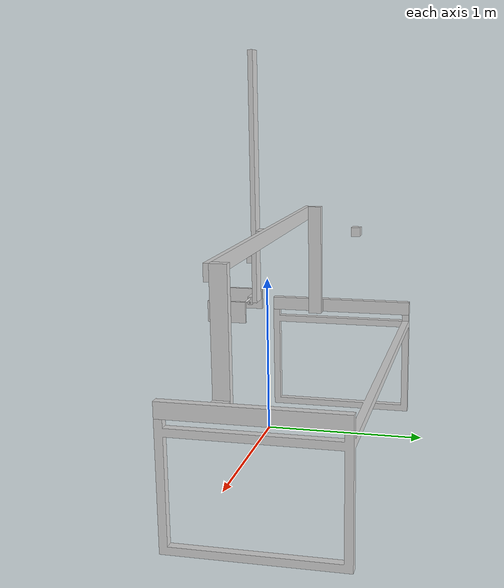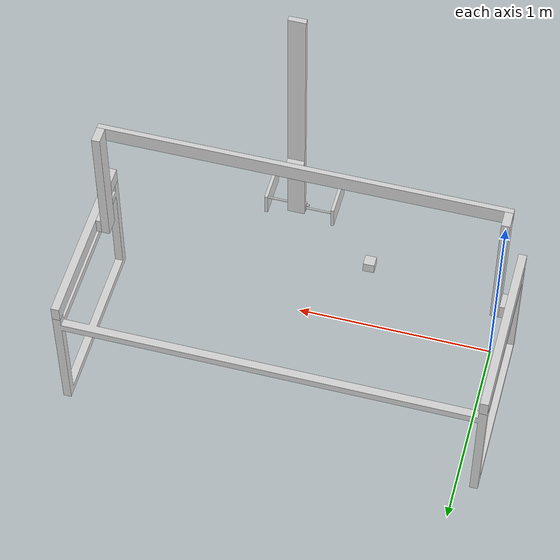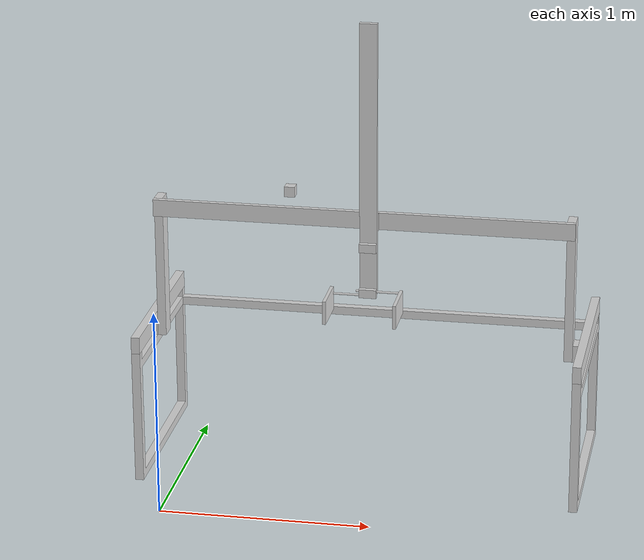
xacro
<?xml version="1.0" ?>
<robot name="palletizer" xmlns:xacro="http://www.ros.org/wiki/xacro">

  <xacro:include filename="$(find palletizer_description)/urdf/materials.xacro" />
  <xacro:include filename="$(find palletizer_description)/urdf/palletizer.gazebo" />

  <link name="world"/>

  <joint name="fixed_to_world" type="fixed">
    <parent link="world"/>
    <child link="base_link"/>
    <origin xyz="0 0 0.01" rpy="0 0 0"/>
  </joint>

  <link name="base_link">
    <inertial>
      <origin xyz="0.9227209592130785 0.5670413416556851 0.5148358419198835" rpy="0 0 0"/>
      <mass value="97.4656"/>
      <inertia ixx="16.747122" iyy="89.286245" izz="94.763561" ixy="0.0" iyz="-2.123132" ixz="0.0"/>
    </inertial>
    <visual>
      <origin xyz="0 0 0" rpy="0 0 0"/>
      <geometry>
        <mesh filename="package://palletizer_description/meshes/base_link.stl" scale="0.001 0.001 0.001"/>
      </geometry>
      <material name="silver"/>
    </visual>
    <collision>
      <origin xyz="0 0 0" rpy="0 0 0"/>
      <geometry>
        <mesh filename="package://palletizer_description/meshes/base_link.stl" scale="0.001 0.001 0.001"/>
      </geometry>
    </collision>
  </link>

  <link name="base_eje_x_izq_1_1">
    <inertial>
      <origin xyz="-0.09727904078692015 0.4987939189752732 0.17607295532194467" rpy="0 0 0"/>
      <mass value="22.1056"/>
      <inertia ixx="1.438338" iyy="0.014737" izz="1.429495" ixy="0.0" iyz="0.0" ixz="0.0"/>
    </inertial>
    <visual>
      <origin xyz="0.0 0.04 -0.64" rpy="0 0 0"/>
      <geometry>
        <mesh filename="package://palletizer_description/meshes/base_eje_x_izq_1_1.stl" scale="0.001 0.001 0.001"/>
      </geometry>
      <material name="silver"/>
    </visual>
    <collision>
      <origin xyz="0.0 0.04 -0.64" rpy="0 0 0"/>
      <geometry>
        <mesh filename="package://palletizer_description/meshes/base_eje_x_izq_1_1.stl" scale="0.001 0.001 0.001"/>
      </geometry>
    </collision>
  </link>

  <link name="base_eje_x_der_1_1">
    <inertial>
      <origin xyz="-0.0972790407869224 0.498793918975273 0.17607295532194644" rpy="0 0 0"/>
      <mass value="22.1056"/>
      <inertia ixx="1.438338" iyy="0.014737" izz="1.429495" ixy="0.0" iyz="-0.0" ixz="0.0"/>
    </inertial>
    <visual>
      <origin xyz="-2.04 0.04 -0.64" rpy="0 0 0"/>
      <geometry>
        <mesh filename="package://palletizer_description/meshes/base_eje_x_der_1_1.stl" scale="0.001 0.001 0.001"/>
      </geometry>
      <material name="silver"/>
    </visual>
    <collision>
      <origin xyz="-2.04 0.04 -0.64" rpy="0 0 0"/>
      <geometry>
        <mesh filename="package://palletizer_description/meshes/base_eje_x_der_1_1.stl" scale="0.001 0.001 0.001"/>
      </geometry>
    </collision>
  </link>

  <joint name="rigida_17" type="fixed">
    <origin xyz="0.0 -0.04 0.64" rpy="0 0 0"/>
    <parent link="base_link"/>
    <child link="base_eje_x_izq_1_1"/>
  </joint>

  <joint name="rigida_18" type="fixed">
    <origin xyz="2.04 -0.04 0.64" rpy="0 0 0"/>
    <parent link="base_link"/>
    <child link="base_eje_x_der_1_1"/>
  </joint>

  <link name="carro_x_der_1_1">
    <inertial>
      <origin xyz="-0.0897790407869099 0.8137417184308351 0.09607295532194371" rpy="0 0 0"/>
      <mass value="1.2559999999999998"/>
      <inertia ixx="0.01" iyy="0.01" izz="0.01" ixy="0.0" iyz="-0.0" ixz="0.0"/>
    </inertial>
    <visual>
      <origin xyz="-2.0 0.04 -0.72" rpy="0 0 0"/>
      <geometry>
        <mesh filename="package://palletizer_description/meshes/carro_x_der_1_1.stl" scale="0.001 0.001 0.001"/>
      </geometry>
      <material name="silver"/>
    </visual>
    <collision>
      <origin xyz="-2.0 0.04 -0.72" rpy="0 0 0"/>
      <geometry>
        <mesh filename="package://palletizer_description/meshes/carro_x_der_1_1.stl" scale="0.001 0.001 0.001"/>
      </geometry>
    </collision>
  </link>

  <link name="carro_x_izq_1_1">
    <inertial>
      <origin xyz="-0.06477904078692007 0.8137417184308272 0.09607295532194471" rpy="0 0 0"/>
      <mass value="1.2559999999999998"/>
      <inertia ixx="0.01" iyy="0.01" izz="0.01" ixy="0.0" iyz="-0.0" ixz="0.0"/>
    </inertial>
    <visual>
      <origin xyz="0.0 0.04 -0.72" rpy="0 0 0"/>
      <geometry>
        <mesh filename="package://palletizer_description/meshes/carro_x_izq_1_1.stl" scale="0.001 0.001 0.001"/>
      </geometry>
      <material name="silver"/>
    </visual>
    <collision>
      <origin xyz="0.0 0.04 -0.72" rpy="0 0 0"/>
      <geometry>
        <mesh filename="package://palletizer_description/meshes/carro_x_izq_1_1.stl" scale="0.001 0.001 0.001"/>
      </geometry>
    </collision>
  </link>

  <joint name="eje_x" type="prismatic">
    <origin xyz="-0.04 0.0 0.08" rpy="0 0 0"/>
    <parent link="base_eje_x_der_1_1"/>
    <child link="carro_x_der_1_1"/>
    <axis xyz="0 1 0"/>
    <limit lower="0.0" upper="0.6" effort="500" velocity="1.0"/>
    <dynamics damping="10.0"/>
  </joint>

  <joint name="eje_x_copia" type="prismatic">
    <origin xyz="0.0 0.0 0.08" rpy="0 0 0"/>
    <parent link="base_eje_x_izq_1_1"/>
    <child link="carro_x_izq_1_1"/>
    <axis xyz="0 1 0"/>
    <limit lower="0.0" upper="0.6" effort="500" velocity="1.0"/>
    <mimic joint="eje_x" multiplier="1.0" offset="0.0"/>
    <dynamics damping="10.0"/>
  </joint>

  <link name="base_y_izq_1_1">
    <inertial>
      <origin xyz="-0.057279040786918894 0.8137417184308281 0.4760729553219435" rpy="0 0 0"/>
      <mass value="17.081599999999998"/>
      <inertia ixx="0.667321" iyy="0.660489" izz="0.011388" ixy="0.0" iyz="0.0" ixz="0.0"/>
    </inertial>
    <visual>
      <origin xyz="-0.025 0.04 -0.64" rpy="0 0 0"/>
      <geometry>
        <mesh filename="package://palletizer_description/meshes/base_y_izq_1_1.stl" scale="0.001 0.001 0.001"/>
      </geometry>
      <material name="silver"/>
    </visual>
    <collision>
      <origin xyz="-0.025 0.04 -0.64" rpy="0 0 0"/>
      <geometry>
        <mesh filename="package://palletizer_description/meshes/base_y_izq_1_1.stl" scale="0.001 0.001 0.001"/>
      </geometry>
    </collision>
  </link>

  <link name="base_y_der_1_1">
    <inertial>
      <origin xyz="-0.09727904078691152 0.8137417184308332 0.47607295532194416" rpy="0 0 0"/>
      <mass value="17.081599999999998"/>
      <inertia ixx="0.667321" iyy="0.660489" izz="0.011388" ixy="0.0" iyz="-0.0" ixz="-0.0"/>
    </inertial>
    <visual>
      <origin xyz="-1.975 0.04 -0.64" rpy="0 0 0"/>
      <geometry>
        <mesh filename="package://palletizer_description/meshes/base_y_der_1_1.stl" scale="0.001 0.001 0.001"/>
      </geometry>
      <material name="silver"/>
    </visual>
    <collision>
      <origin xyz="-1.975 0.04 -0.64" rpy="0 0 0"/>
      <geometry>
        <mesh filename="package://palletizer_description/meshes/base_y_der_1_1.stl" scale="0.001 0.001 0.001"/>
      </geometry>
    </collision>
  </link>

  <joint name="rigida_5" type="fixed">
    <origin xyz="0.025 0.0 -0.08" rpy="0 0 0"/>
    <parent link="carro_x_izq_1_1"/>
    <child link="base_y_izq_1_1"/>
  </joint>

  <joint name="rigida_6" type="fixed">
    <origin xyz="-0.025 0.0 -0.08" rpy="0 0 0"/>
    <parent link="carro_x_der_1_1"/>
    <child link="base_y_der_1_1"/>
  </joint>

  <link name="eje_carro_y_1_1">
    <inertial>
      <origin xyz="0.9749999592130977 -0.01250028156917038 -0.040000044678056845" rpy="0 0 0"/>
      <mass value="30.614999999998826"/>
      <inertia ixx="0.017923" iyy="9.717456" izz="9.702723" ixy="0.0" iyz="0.0" ixz="0.0"/>
    </inertial>
    <visual>
      <origin xyz="0.052279 -0.733742 -1.456073" rpy="0 0 0"/>
      <geometry>
        <mesh filename="package://palletizer_description/meshes/eje_carro_y_1_1.stl" scale="0.001 0.001 0.001"/>
      </geometry>
      <material name="silver"/>
    </visual>
    <collision>
      <origin xyz="0.052279 -0.733742 -1.456073" rpy="0 0 0"/>
      <geometry>
        <mesh filename="package://palletizer_description/meshes/eje_carro_y_1_1.stl" scale="0.001 0.001 0.001"/>
      </geometry>
    </collision>
  </link>

  <joint name="rigida_7" type="fixed">
    <origin xyz="-2.027279 0.773742 0.816073" rpy="0 0 0"/>
    <parent link="base_y_der_1_1"/>
    <child link="eje_carro_y_1_1"/>
  </joint>

  <link name="carro_y_1_1">
    <inertial>
      <origin xyz="0.5213953273478066 -0.012500281569168936 -0.040000044678056845" rpy="0 0 0"/>
      <mass value="1.2559999999999998"/>
      <inertia ixx="0.01" iyy="0.01" izz="0.01" ixy="-0.0" iyz="0.0" ixz="0.0"/>
    </inertial>
    <visual>
      <origin xyz="0.052279 -0.708742 -1.456073" rpy="0 0 0"/>
      <geometry>
        <mesh filename="package://palletizer_description/meshes/carro_y_1_1.stl" scale="0.001 0.001 0.001"/>
      </geometry>
      <material name="silver"/>
    </visual>
    <collision>
      <origin xyz="0.052279 -0.708742 -1.456073" rpy="0 0 0"/>
      <geometry>
        <mesh filename="package://palletizer_description/meshes/carro_y_1_1.stl" scale="0.001 0.001 0.001"/>
      </geometry>
    </collision>
  </link>

  <joint name="eje_y" type="prismatic">
    <origin xyz="0.0 -0.025 0.0" rpy="0 0 0"/>
    <parent link="eje_carro_y_1_1"/>
    <child link="carro_y_1_1"/>
    <axis xyz="1.0 0.0 0.0"/>
    <limit upper="0.71" lower="-0.75" effort="500" velocity="1.0"/>
  </joint>

  <link name="carro_z_1_1">
    <inertial>
      <origin xyz="-0.039999672652193785 -0.012500281569168159 -0.22447073332304135" rpy="0 0 0"/>
      <mass value="20.095999999999986"/>
      <inertia ixx="2.744821" iyy="2.754492" izz="0.011765" ixy="0.0" iyz="0.0" ixz="0.0"/>
    </inertial>
    <visual>
      <origin xyz="-0.509116 -0.683742 -1.456073" rpy="0 0 0"/>
      <geometry>
        <mesh filename="package://palletizer_description/meshes/carro_z_1_1.stl" scale="0.001 0.001 0.001"/>
      </geometry>
      <material name="silver"/>
    </visual>
    <collision>
      <origin xyz="-0.509116 -0.683742 -1.456073" rpy="0 0 0"/>
      <geometry>
        <mesh filename="package://palletizer_description/meshes/carro_z_1_1.stl" scale="0.001 0.001 0.001"/>
      </geometry>
    </collision>
  </link>

 <joint name="eje_z" type="prismatic">
    <origin xyz="0.561395 -0.025 0.85" rpy="0 0 0"/>
    <parent link="carro_y_1_1"/>
    <child link="carro_z_1_1"/>
    <axis xyz="0.0 0.0 1.0"/>
    <limit lower="-0.90" upper="0.0" effort="2000" velocity="1.0"/>
  </joint>

  <link name="base_muneca_1_1">
    <inertial>
      <origin xyz="-0.03999967265219412 -0.012500281569164162 0.01000026667695808" rpy="0 0 0"/>
      <mass value="0.6279999999999999"/>
      <inertia ixx="0.01" iyy="0.01" izz="0.01" ixy="0.0" iyz="0.0" ixz="-0.0"/>
    </inertial>
    <visual>
      <origin xyz="-0.509116 -0.658742 -0.591602" rpy="0 0 0"/>
      <geometry>
        <mesh filename="package://palletizer_description/meshes/base_muneca_1_1.stl" scale="0.001 0.001 0.001"/>
      </geometry>
      <material name="silver"/>
    </visual>
    <collision>
      <origin xyz="-0.509116 -0.658742 -0.591602" rpy="0 0 0"/>
      <geometry>
        <mesh filename="package://palletizer_description/meshes/base_muneca_1_1.stl" scale="0.001 0.001 0.001"/>
      </geometry>
    </collision>
  </link>

  <joint name="rigida_12" type="fixed">
    <origin xyz="0.0 -0.025 -0.864471" rpy="0 0 0"/>
    <parent link="carro_z_1_1"/>
    <child link="base_muneca_1_1"/>
  </joint>

  <link name="eje_muneca_izq_1">
    <inertial>
      <origin xyz="-0.24311767265219475 0.27886571843083735 0.18938726667695815" rpy="0 0 0"/>
      <mass value="0.12330751165339957"/>
      <inertia ixx="0.01" iyy="0.01" izz="0.01" ixy="0.0" iyz="0.0" ixz="0.0"/>
    </inertial>
    <visual>
      <origin xyz="-0.652234 -0.367376 -0.402215" rpy="0 0 0"/>
      <geometry>
        <mesh filename="package://palletizer_description/meshes/eje_muneca_izq_1.stl" scale="0.001 0.001 0.001"/>
      </geometry>
      <material name="silver"/>
    </visual>
    <collision>
      <origin xyz="-0.652234 -0.367376 -0.402215" rpy="0 0 0"/>
      <geometry>
        <mesh filename="package://palletizer_description/meshes/eje_muneca_izq_1.stl" scale="0.001 0.001 0.001"/>
      </geometry>
    </collision>
  </link>

  <link name="eje_muneca_der_1_1">
    <inertial>
      <origin xyz="-0.21709999379698341 0.2788657184308348 0.2493872666769576" rpy="0 0 0"/>
      <mass value="0.12330751165339962"/>
      <inertia ixx="0.01" iyy="0.01" izz="0.01" ixy="-0.0" iyz="-0.0" ixz="0.0"/>
    </inertial>
    <visual>
      <origin xyz="-0.732234 -0.367376 -0.362215" rpy="0 0 0"/>
      <geometry>
        <mesh filename="package://palletizer_description/meshes/eje_muneca_der_1_1.stl" scale="0.001 0.001 0.001"/>
      </geometry>
      <material name="silver"/>
    </visual>
    <collision>
      <origin xyz="-0.732234 -0.367376 -0.362215" rpy="0 0 0"/>
      <geometry>
        <mesh filename="package://palletizer_description/meshes/eje_muneca_der_1_1.stl" scale="0.001 0.001 0.001"/>
      </geometry>
    </collision>
  </link>

  <joint name="muneca" type="prismatic">
    <origin xyz="0.143118 -0.291366 -0.189387" rpy="0 0 0"/>
    <parent link="base_muneca_1_1"/>
    <child link="eje_muneca_izq_1"/>
    <axis xyz="-1.0 0.0 0.0"/>
    <limit upper="0.08" lower="-0.05" effort="1000" velocity="1.0"/>
  </joint>

  <joint name="corredera_14" type="prismatic">
    <origin xyz="0.223118 -0.291366 -0.229387" rpy="0 0 0"/>
    <parent link="base_muneca_1_1"/>
    <child link="eje_muneca_der_1_1"/>
    <axis xyz="1.0 0.0 0.0"/>
    <limit upper="0.08" lower="-0.05" effort="1000" velocity="1.0"/>
    <mimic joint="muneca" multiplier="1.0" offset="0.0"/>
  </joint>

  <link name="paleta_muneca_der_1">
    <inertial>
      <origin xyz="-0.12163499379698262 -0.3438652815691654 -0.5143867333230419" rpy="0 0 0"/>
      <mass value="2.590499999999999"/>
      <inertia ixx="0.011247" iyy="0.002661" izz="0.008684" ixy="-0.0" iyz="0.0" ixz="0.0"/>
    </inertial>
    <visual>
      <origin xyz="-0.744269 -0.900107 -1.080989" rpy="0 0 0"/>
      <geometry>
        <mesh filename="package://palletizer_description/meshes/paleta_muneca_der_1.stl" scale="0.001 0.001 0.001"/>
      </geometry>
      <material name="silver"/>
    </visual>
    <collision>
      <origin xyz="-0.744269 -0.900107 -1.080989" rpy="0 0 0"/>
      <geometry>
        <mesh filename="package://palletizer_description/meshes/paleta_muneca_der_1.stl" scale="0.001 0.001 0.001"/>
      </geometry>
    </collision>
  </link>

  <link name="paleta_muneca_izq_1_1">
    <inertial>
      <origin xyz="0.0937403273478058 0.16375771843083936 -0.5030687333230426" rpy="0 0 0"/>
      <mass value="2.590499999999999"/>
      <inertia ixx="0.011247" iyy="0.002661" izz="0.008684" ixy="-0.0" iyz="0.0" ixz="0.0"/>
    </inertial>
    <visual>
      <origin xyz="-0.207876 -0.392484 -1.069671" rpy="0 0 0"/>
      <geometry>
        <mesh filename="package://palletizer_description/meshes/paleta_muneca_izq_1_1.stl" scale="0.001 0.001 0.001"/>
      </geometry>
      <material name="silver"/>
    </visual>
    <collision>
      <origin xyz="-0.207876 -0.392484 -1.069671" rpy="0 0 0"/>
      <geometry>
        <mesh filename="package://palletizer_description/meshes/paleta_muneca_izq_1_1.stl" scale="0.001 0.001 0.001"/>
      </geometry>
    </collision>
  </link>

  <joint name="rigida_15" type="fixed">
    <origin xyz="0.012035 0.532731 0.718774" rpy="0 0 0"/>
    <parent link="eje_muneca_der_1_1"/>
    <child link="paleta_muneca_der_1"/>
  </joint>

  <joint name="rigida_16" type="fixed">
    <origin xyz="-0.444358 0.025108 0.667456" rpy="0 0 0"/>
    <parent link="eje_muneca_izq_1"/>
    <child link="paleta_muneca_izq_1_1"/>
  </joint>

  <link name="soporte_camara_1_1">
    <inertial>
      <origin xyz="-0.03999967265219734 -0.012500281569165606 0.2300002666769576" rpy="0 0 0"/>
      <mass value="0.6279999999999999"/>
      <inertia ixx="0.01" iyy="0.01" izz="0.01" ixy="-0.0" iyz="0.0" ixz="-0.0"/>
    </inertial>
    <visual>
      <origin xyz="-0.509116 -0.658742 -0.591602" rpy="0 0 0"/>
      <geometry>
        <mesh filename="package://palletizer_description/meshes/soporte_camara_1_1.stl" scale="0.001 0.001 0.001"/>
      </geometry>
      <material name="silver"/>
    </visual>
    <collision>
      <origin xyz="-0.509116 -0.658742 -0.591602" rpy="0 0 0"/>
      <geometry>
        <mesh filename="package://palletizer_description/meshes/soporte_camara_1_1.stl" scale="0.001 0.001 0.001"/>
      </geometry>
    </collision>
  </link>

  <joint name="rigida_11" type="fixed">
    <origin xyz="0.0 -0.025 -0.864471" rpy="0 0 0"/>
    <parent link="carro_z_1_1"/>
    <child link="soporte_camara_1_1"/>
  </joint>

  <link name="camera_link">
    <inertial>
      <mass value="0.1"/>
      <origin xyz="0 0 0" rpy="0 0 0"/>
      <inertia ixx="0.0001" iyy="0.0001" izz="0.0001" ixy="0" iyz="0" ixz="0"/>
    </inertial>
    <visual>
      <origin xyz="0 0 0" rpy="0 0 0"/>
      <geometry>
        <box size="0.05 0.05 0.05"/>
      </geometry>
      <material name="silver"/>
    </visual>
    <collision>
      <origin xyz="0 0 0" rpy="0 0 0"/>
      <geometry>
        <box size="0.05 0.05 0.05"/>
      </geometry>
    </collision>
  </link>

  <joint name="camera_joint" type="fixed">
    <origin xyz="0 0 -0.05" rpy="0 1.5708 0"/>
    <parent link="soporte_camara_1_1"/>
    <child link="camera_link"/>
  </joint>

  <gazebo reference="paleta_muneca_der_1">
    <mu1>100.0</mu1>
    <mu2>100.0</mu2>
    <kp>1000000.0</kp>
    <kd>1.0</kd>
  </gazebo>

  <gazebo reference="paleta_muneca_izq_1_1">
    <mu1>100.0</mu1>
    <mu2>100.0</mu2>
    <kp>1000000.0</kp>
    <kd>1.0</kd>
  </gazebo>

  <gazebo reference="camera_link">
    <sensor name="camera_sensor" type="camera">
      <pose>0 0 0 0 0 0</pose>
      <visualize>true</visualize>
      <update_rate>30.0</update_rate>
      <camera>
        <horizontal_fov>1.089</horizontal_fov>
        <image>
          <width>640</width>
          <height>480</height>
          <format>R8G8B8</format>
        </image>
        <clip>
          <near>0.05</near>
          <far>8.0</far>
        </clip>
      </camera>
      <plugin filename="libignition-gazebo-sensors-system.so" name="ignition::gazebo::systems::Sensors">
        <render_engine>ogre2</render_engine>
      </plugin>
    </sensor>
  </gazebo>

  <ros2_control name="IgnitionSystem" type="system">
    <hardware>
      <plugin>gz_ros2_control/GazeboSimSystem</plugin>
    </hardware>

    <joint name="eje_x">
      <command_interface name="position">
        <param name="min">0.0</param>
        <param name="max">0.6</param>
      </command_interface>
      <state_interface name="position"/>
      <state_interface name="velocity"/>
    </joint>

    <joint name="eje_x_copia">
      <param name="mimic">eje_x</param>
      <param name="multiplier">1.0</param>
      <command_interface name="position"/>
      <state_interface name="position"/>
      <state_interface name="velocity"/>
    </joint>

    <joint name="eje_y">
      <command_interface name="position">
        <param name="min">-0.75</param>
        <param name="max">0.71</param>
      </command_interface>
      <state_interface name="position"/>
      <state_interface name="velocity"/>
    </joint>

    <joint name="eje_z">
      <command_interface name="position">
        <param name="min">-0.90</param>
        <param name="max">0.0</param>
      </command_interface>
      <state_interface name="position"/>
      <state_interface name="velocity"/>
    </joint>

    <joint name="muneca">
      <command_interface name="position">
        <param name="min">-0.08</param>
        <param name="max">0.08</param>
      </command_interface>
      <state_interface name="position"/>
      <state_interface name="velocity"/>
    </joint>

    <joint name="corredera_14">
      <param name="mimic">muneca</param>
      <param name="multiplier">1.0</param>
      <command_interface name="position"/>
      <state_interface name="position"/>
      <state_interface name="velocity"/>
    </joint>
  </ros2_control>

  <gazebo>
    <plugin filename="gz_ros2_control-system" name="gz_ros2_control::GazeboSimROS2ControlPlugin">
      <parameters>$(find palletizer_description)/config/controlador_paletizador.yaml</parameters>
    </plugin>
  </gazebo>

  <gazebo reference="carro_z_1_1">
    <gravity>false</gravity>
  </gazebo>
  <gazebo reference="carro_z_1_1">
    <gravity>false</gravity>
  </gazebo>
  <gazebo reference="base_muneca_1_1">
    <gravity>false</gravity>
  </gazebo>
  <gazebo reference="eje_muneca_izq_1">
    <gravity>false</gravity>
  </gazebo>
  <gazebo reference="eje_muneca_der_1_1">
    <gravity>false</gravity>
  </gazebo>
  <gazebo reference="paleta_muneca_der_1">
    <gravity>false</gravity>
  </gazebo>
  <gazebo reference="paleta_muneca_izq_1_1">
    <gravity>false</gravity>
  </gazebo>
  <gazebo reference="soporte_camara_1_1">
    <gravity>false</gravity>
  </gazebo>
  <gazebo reference="camera_link">
    <gravity>false</gravity>
  </gazebo>
</robot>

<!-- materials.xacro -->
<robot name="palletizer" xmlns:xacro="http://www.ros.org/wiki/xacro" >

<material name="silver">
  <color rgba="0.85 0.85 0.85 1.0"/>
</material>

</robot>

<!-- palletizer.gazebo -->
<xacro:contents xmlns:xacro="http://www.ros.org/wiki/xacro">

<xacro:property name="body_color" value="Gazebo/Silver" />

<gazebo reference="base_link">
  <material>${body_color}</material>
  <mu1>0.2</mu1>
  <mu2>0.2</mu2>
  <selfCollide>false</selfCollide>
  <gravity>true</gravity>
</gazebo>

<gazebo reference="paleta_muneca_der_1">
  <material>Gazebo/Grey</material>
  <mu1>2.0</mu1> <mu2>2.0</mu2>
  <kp>1000000.0</kp>
  <kd>1.0</kd>
  <selfCollide>false</selfCollide>
</gazebo>

<gazebo reference="paleta_muneca_izq_1_1">
  <material>Gazebo/Grey</material>
  <mu1>2.0</mu1>
  <mu2>2.0</mu2>
  <kp>1000000.0</kp>
  <kd>1.0</kd>
  <selfCollide>false</selfCollide>
</gazebo>

<gazebo reference="soporte_camara_1_1">
  <sensor name="camera" type="camera">
    <pose>0 0 0 0 0 0</pose>
    <visualize>true</visualize>
    <update_rate>30</update_rate>
    <camera>
      <horizontal_fov>1.089</horizontal_fov>
      <image>
        <format>R8G8B8</format>
        <width>640</width>
        <height>480</height>
      </image>
      <clip>
        <near>0.05</near>
        <far>8.0</far>
      </clip>
    </camera>
    <plugin filename="libignition-gazebo-camera-system.so" name="ignition::gazebo::systems::Camera">
    </plugin>
  </sensor>
</gazebo>

</xacro:contents>
